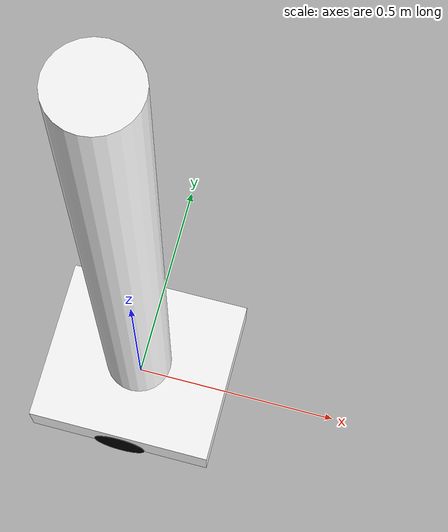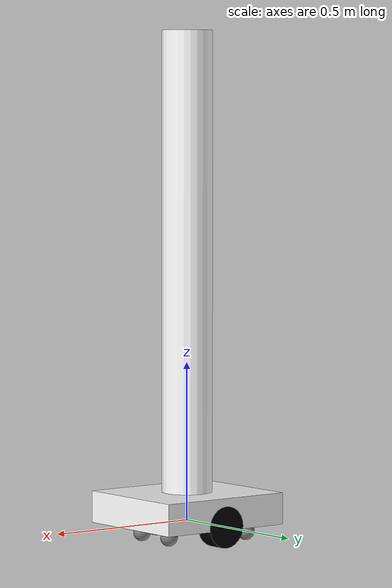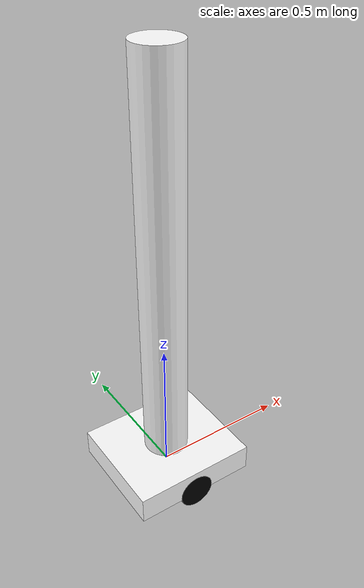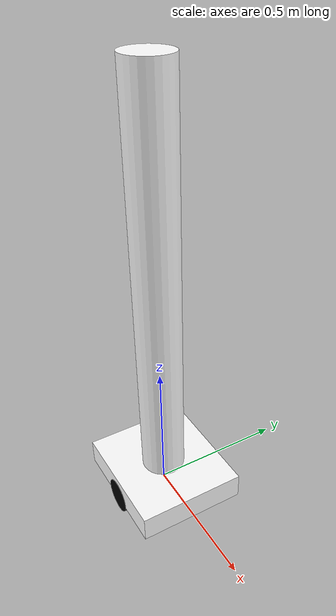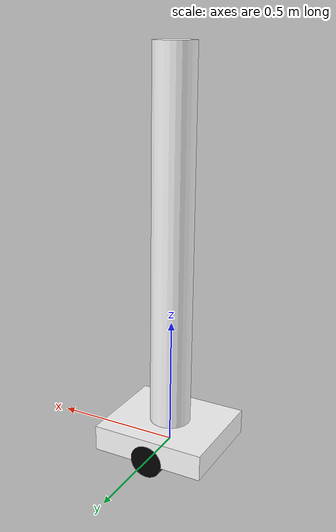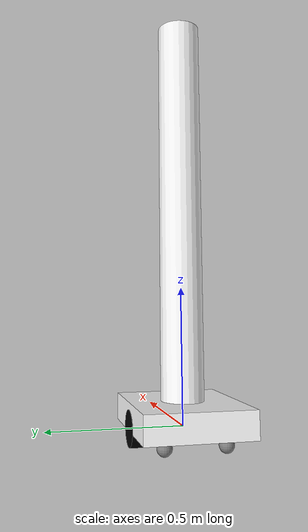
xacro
<?xml version="1.0"?>
<robot xmlns:xacro="http://www.ros.org/wiki/xacro" >

    <xacro:include filename="inertial_macros.xacro"/>

    <material name="white">
        <color rgba="1 1 1 1"/>
    </material>

    <material name="orange">
        <color rgba="1 0.3 0.1 1"/>
    </material>

    <material name="blue">
        <color rgba="0.2 0.2 1 1"/>
    </material>

    <material name="black">
        <color rgba="0 0 0 1"/>
    </material>

    <material name="gray">
        <color rgba="0.5 0.5 0.5 1"/>
    </material>

    <!-- BASE LINK -->
    <link name="base_link">

    </link>

    <!-- CHASSIS LINK -->
    <joint name="chassis_joint" type="fixed">
        <parent link="base_link"/>
        <child link="chassis"/>
        <origin xyz="-0.225 0 -0.0095"/>
    </joint>

    <link name="chassis">
        <visual>
            <origin xyz="0.225 0 0.05" rpy="0 0 0"/>
            <geometry>
                <box size="0.45 0.4 0.1"/>
            </geometry>
            <material name="white"/>
        </visual>
        <visual>
            <origin xyz="0.225 0 0.8"/>
            <geometry>
                <cylinder radius="0.08" length="1.5"/>
            </geometry>
            <material name="white"/>
        </visual>
        <collision>
            <origin xyz="0.225 0 0.05" rpy="0 0 0"/>
            <geometry>
                <box size="0.45 0.4 0.1"/>
            </geometry>
        </collision>
        <collision>
            <origin xyz="0.225 0 0.8"/>
            <geometry>
                <cylinder radius="0.08" length="1.5"/>
            </geometry>
            <material name="white"/>
        </collision>
        <xacro:inertial_box mass="12" x="0.45" y="0.4" z="0.1">
            <origin xyz="0.225 0 0.05" rpy="0 0 0"/>
        </xacro:inertial_box>
    </link>

    <gazebo reference="chassis">
        <material>Gazebo/White</material>
    </gazebo>

    <!-- LEFT WHEEL -->

    <joint name="left_wheel_joint" type="continuous">
        <parent link="base_link"/>
        <child link="left_wheel"/>
        <origin xyz="0 0.171 0" rpy="-${pi/2} 0 0"/>
        <axis xyz="0 0 1"/>
    </joint>

    <link name="left_wheel">
        <visual>
            <geometry>
                <cylinder length="0.06" radius="0.065" />
            </geometry>
            <material name="black"/>
        </visual>
        <collision>
            <geometry>
                <sphere radius="0.065" />
            </geometry>
        </collision>
        <xacro:inertial_cylinder mass="0.3" length="0.06" radius="0.065">
            <origin xyz="0 0 0" rpy="0 0 0"/>
        </xacro:inertial_cylinder>
    </link>

    <gazebo reference="left_wheel">
        <material>Gazebo/Black</material>
    </gazebo>

    <!-- RIGHT WHEEL -->

    <joint name="right_wheel_joint" type="continuous">
        <parent link="base_link"/>
        <child link="right_wheel"/>
        <origin xyz="0 -0.171 0" rpy="${pi/2} 0 0"/>
        <axis xyz="0 0 -1"/>
    </joint>

    <link name="right_wheel">
        <visual>
            <geometry>
                <cylinder length="0.06" radius="0.065" />
            </geometry>
            <material name="black"/>
        </visual>
        <collision>
            <geometry>
                <sphere radius="0.065" />
            </geometry>
        </collision>
        <xacro:inertial_cylinder mass="0.3" length="0.06" radius="0.065">
            <origin xyz="0 0 0" rpy="0 0 0"/>
        </xacro:inertial_cylinder>
    </link>

    <gazebo reference="right_wheel">
        <material>Gazebo/Black</material>
    </gazebo>

    <!-- CASTER WHEEL 1 -->

    <joint name="caster_wheel_joint_1" type="fixed">
        <parent link="chassis"/>
        <child link="caster_wheel_1"/>
        <origin xyz="0.075 0.11 -0.0265" rpy="0 0 0"/>
    </joint>

    <link name="caster_wheel_1">
        <visual>
            <geometry>
                <sphere radius="0.027" />
            </geometry>
            <material name="gray"/>
        </visual>
        <collision>
            <geometry>
                <sphere radius="0.027" />
            </geometry>
        </collision>
        <xacro:inertial_sphere mass="0.1" radius="0.027">
            <origin xyz="0 0 0" rpy="0 0 0"/>
        </xacro:inertial_sphere>
    </link>

    <gazebo reference="caster_wheel_1">
        <material>Gazebo/Gray</material>
        <mu1 value="0.001"/>
        <mu2 value="0.001"/>
    </gazebo>

    <!-- CASTER WHEEL 2 -->

    <joint name="caster_wheel_joint_2" type="fixed">
        <parent link="chassis"/>
        <child link="caster_wheel_2"/>
        <origin xyz="0.075 -0.11 -0.0265" rpy="0 0 0"/>
    </joint>

    <link name="caster_wheel_2">
        <visual>
            <geometry>
                <sphere radius="0.027" />
            </geometry>
            <material name="gray"/>
        </visual>
        <collision>
            <geometry>
                <sphere radius="0.027" />
            </geometry>
        </collision>
        <xacro:inertial_sphere mass="0.1" radius="0.027">
            <origin xyz="0 0 0" rpy="0 0 0"/>
        </xacro:inertial_sphere>
    </link>

    <gazebo reference="caster_wheel_2">
        <material>Gazebo/Gray</material>
        <mu1 value="0.001"/>
        <mu2 value="0.001"/>
    </gazebo>

    <!-- CASTER WHEEL 3 -->

    <joint name="caster_wheel_joint_3" type="fixed">
        <parent link="chassis"/>
        <child link="caster_wheel_3"/>
        <origin xyz="0.35 0.07 -0.0265" rpy="0 0 0"/>
    </joint>

    <link name="caster_wheel_3">
        <visual>
            <geometry>
                <sphere radius="0.027" />
            </geometry>
            <material name="gray"/>
        </visual>
        <collision>
            <geometry>
                <sphere radius="0.027" />
            </geometry>
        </collision>
        <xacro:inertial_sphere mass="0.1" radius="0.027">
            <origin xyz="0 0 0" rpy="0 0 0"/>
        </xacro:inertial_sphere>
    </link>

    <gazebo reference="caster_wheel_3">
        <material>Gazebo/Gray</material>
        <mu1 value="0.001"/>
        <mu2 value="0.001"/>
    </gazebo>

    <!-- CASTER WHEEL 4 -->

    <joint name="caster_wheel_joint_4" type="fixed">
        <parent link="chassis"/>
        <child link="caster_wheel_4"/>
        <origin xyz="0.35 -0.07 -0.0265" rpy="0 0 0"/>
    </joint>

    <link name="caster_wheel_4">
        <visual>
            <geometry>
                <sphere radius="0.027" />
            </geometry>
            <material name="gray"/>
        </visual>
        <collision>
            <geometry>
                <sphere radius="0.027" />
            </geometry>
        </collision>
        <xacro:inertial_sphere mass="0.1" radius="0.027">
            <origin xyz="0 0 0" rpy="0 0 0"/>
        </xacro:inertial_sphere>
    </link>

    <gazebo reference="caster_wheel_4">
        <material>Gazebo/Gray</material>
        <mu1 value="0.001"/>
        <mu2 value="0.001"/>
    </gazebo>

</robot>
